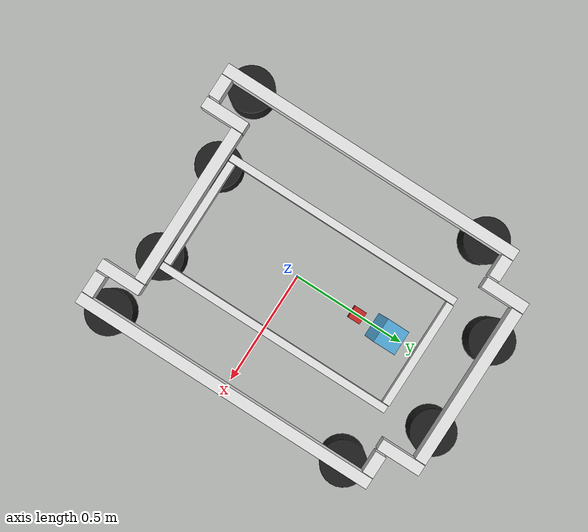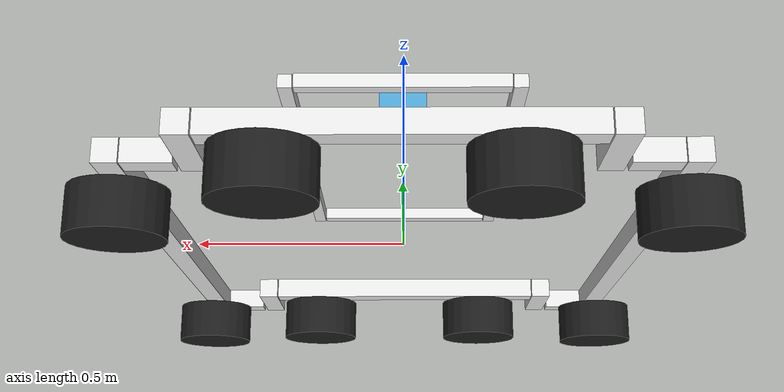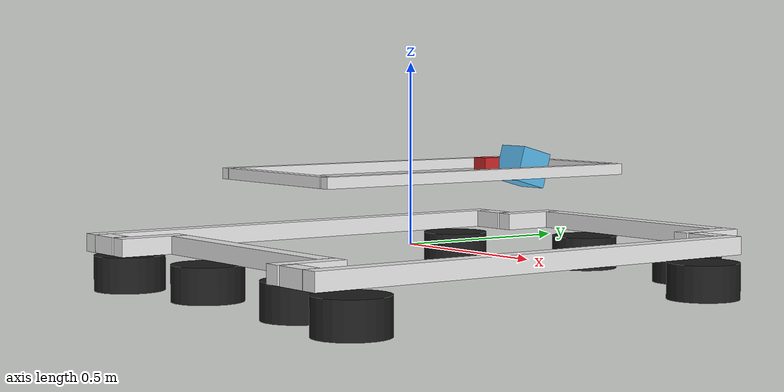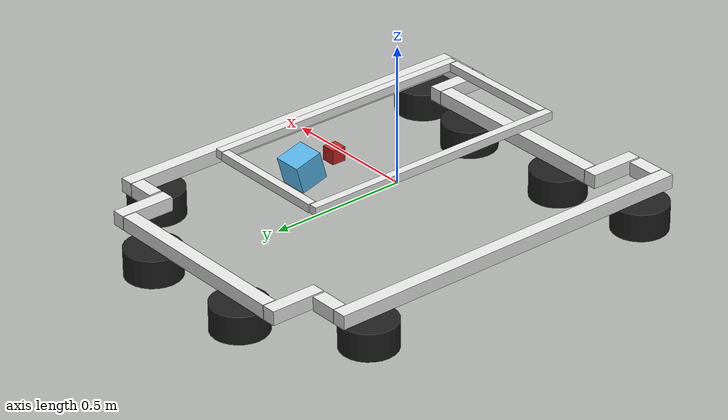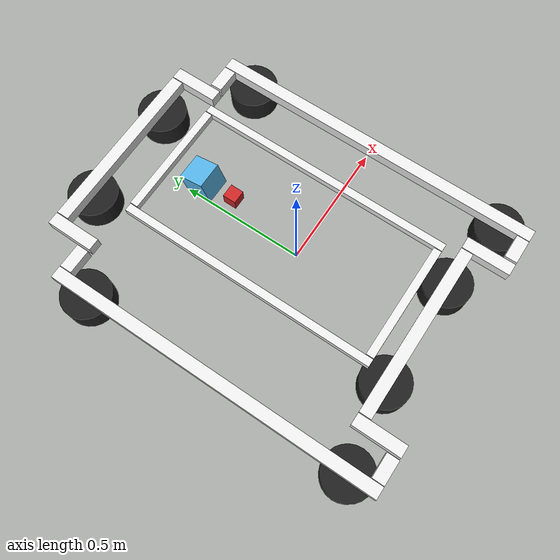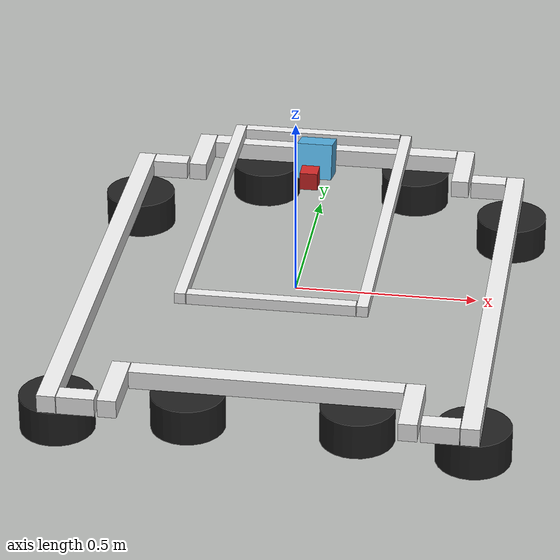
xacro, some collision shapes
<?xml version="1.0"?>
<robot name="gecko" xmlns:xacro="http://www.ros.org/wiki/xacro">

  <xacro:include filename="$(find gecko_description)/urdf/materials.xacro" />
  <xacro:include filename="$(find gecko_description)/urdf/gecko.gazebo" />
  <xacro:include filename="$(find gecko_description)/urdf/camera.xacro" />
  <xacro:include filename="$(find gecko_description)/urdf/laser.xacro" />
  <!--xacro:include filename="$(find gecko_description)/urdf/flashlight.urdf.xacro" /-->

    <!--////////////////////////// plugins ////////////////////////////////////////////////-->

    <gazebo>
    <plugin name="gazebo_ros_control" filename="libgazebo_ros_control.so">
      <robotNamespace>/gecko</robotNamespace>
      <legacyModeNS>true</legacyModeNS>
    </plugin>
  </gazebo>

  <!--////////////////////////// properties ////////////////////////////////////////////////-->

  <xacro:property name="high_mass" value="5" />
  <xacro:property name="low_mass" value="5" />

  <!--////////////////////////// macros ////////////////////////////////////////////////-->

    <xacro:macro name="default_high_inertial">
        <inertial>
                <mass value="${high_mass}" />
                <inertia ixx="1.0" ixy="0.0" ixz="0.0"
                     iyy="1.0" iyz="0.0"
                     izz="1.0" />
        </inertial>
    </xacro:macro>

   <xacro:macro name="default_low_inertial">
        <inertial>
                <mass value="${low_mass}" />
                <inertia ixx="1.0" ixy="0.0" ixz="0.0"
                     iyy="1.0" iyz="0.0"
                     izz="1.0" />
        </inertial>
    </xacro:macro>

    <xacro:macro name="tire">
	<visual>
      <geometry>
        <cylinder length="0.1" radius="0.1"/>
      </geometry>
      <origin rpy="0 0 0" xyz="0 0 -0.09"/>
      <material name="black"/>
    </visual>
    <collision>

    <geometry>
        <cylinder length="0.1" radius="0.1"/>
      </geometry>
      <origin rpy="0 0 0" xyz="0 0 -0.09"/>
      <material name="red"/>
          <surface>
        <friction>
          <ode><mu>100000.0</mu><mu2>100000.0</mu2></ode>
        </friction>
      </surface>
      </collision>
    </xacro:macro>

  <!--////////////////////////// left upper links ////////////////////////////////////////////////-->

  <link name="base_link">
  </link>

 <link name="left_leg">
    <visual>
      <geometry>
        <box size="0.05 1.4 0.05"/>
      </geometry>
      <origin rpy="0 0 0" xyz="0 0 0"/>
      <material name="white"/>
    </visual>
    <collision>
    <geometry>
        <box size="0.05 1.4 0.05"/>
      </geometry>
      <origin rpy="0 0 0" xyz="0 0 0"/>
      <material name="red"/>
      </collision>
    <xacro:default_low_inertial />
  </link>

  <joint name="left_leg_joint" type="fixed">
    <parent link="base_link"/>
    <child link="left_leg"/>
    <origin xyz="0.55 0 0"/>
    </joint>

  <link name="upper_left_bar_1">
    <visual>
      <geometry>
        <box size="0.1 0.05 0.05"/>
      </geometry>
      <origin rpy="0 0 0" xyz="-0.077 0 0"/>
      <material name="white"/>
    </visual>
    <collision>
    <geometry>
       <box size="0.1 0.05 0.05"/>
      </geometry>
      <origin rpy="0 0 0" xyz="-0.077 0 0"/>
      <material name="red"/>
          </collision>
    <xacro:default_low_inertial />
  </link>

  <joint name="upper_left_bar_1_joint" type="continuous">
    <parent link="left_leg"/>
    <child link="upper_left_bar_1"/>
    <axis xyz="1 0 0"/>
    <origin xyz="0 -0.675 0"/>
  </joint>

  <link name="upper_left_bar_2">
    <visual>
      <geometry>
        <box size="0.05 0.2 0.05"/>
      </geometry>
      <origin rpy="0 0 0" xyz="0 0.075 0"/>
      <material name="white"/>
    </visual>
    <collision>
     <geometry>
      <box size="0.05 0.2 0.05"/>
      </geometry>
      <origin rpy="0 0 0" xyz="0 0.075 0"/>
      <material name="red"/>
      </collision>
    <xacro:default_low_inertial />
  </link>

  <joint name="upper_left_bar_2_joint" type="fixed">
    <parent link="upper_left_bar_1"/>
    <child link="upper_left_bar_2"/>
    <origin xyz="-0.16 0 0"/>
  </joint>

    <!--////////////////////////// right upper links ////////////////////////////////////////////////-->

   <link name="right_leg">
    <visual>
      <geometry>
        <box size="0.05 1.4 0.05"/>
      </geometry>
      <origin rpy="0 0 0" xyz="0 0 0"/>
      <material name="white"/>
    </visual>
    <collision>
    <geometry>
        <box size="0.05 1.4 0.05"/>
      </geometry>
      <origin rpy="0 0 0" xyz="0 0 0"/>
      <material name="red"/>
      </collision>
    <xacro:default_low_inertial />
  </link>

  <joint name="right_leg_joint" type="fixed">
    <parent link="base_link"/>
    <child link="right_leg"/>
    <origin xyz="-0.55 0 0"/>
    </joint>

  <link name="upper_right_bar_1">
    <visual>
      <geometry>
        <box size="0.1 0.05 0.05"/>
      </geometry>
      <origin rpy="0 0 0" xyz="0.077 0 0"/>
      <material name="white"/>
    </visual>
    <collision>
    <geometry>
       <box size="0.1 0.05 0.05"/>
      </geometry>
      <origin rpy="0 0 0" xyz="0.077 0 0"/>
      <material name="red"/>
          </collision>
    <xacro:default_low_inertial />
  </link>

  <joint name="upper_right_bar_1_joint" type="continuous">
    <parent link="right_leg"/>
    <child link="upper_right_bar_1"/>
    <axis xyz="1 0 0"/>
    <origin xyz="0 -0.675 0"/>
  </joint>

  <link name="upper_right_bar_2">
    <visual>
      <geometry>
        <box size="0.05 0.2 0.05"/>
      </geometry>
      <origin rpy="0 0 0" xyz="0 -0.075 0"/>
      <material name="white"/>
    </visual>
    <collision>
     <geometry>
      <box size="0.05 0.2 0.05"/>
      </geometry>
      <origin rpy="0 0 0" xyz="0 -0.075 0"/>
      <material name="red"/>
      </collision>
    <xacro:default_low_inertial />
  </link>

  <joint name="upper_right_bar_2_joint" type="fixed">
    <parent link="upper_bar"/>
    <child link="upper_right_bar_2"/>
    <origin xyz="-0.78 0 0"/>
  </joint>

 <!--////////////////////////// left lower links ////////////////////////////////////////////////-->

  <link name="lower_left_bar_1">
    <visual>
      <geometry>
        <box size="0.1 0.05 0.05"/>
      </geometry>
      <origin rpy="0 0 0" xyz="-0.077 0 0"/>
      <material name="white"/>
    </visual>
    <collision>
    <geometry>
       <box size="0.1 0.05 0.05"/>
      </geometry>
      <origin rpy="0 0 0" xyz="-0.077 0 0"/>
      <material name="red"/>
          </collision>
    <xacro:default_low_inertial />
  </link>

  <joint name="lower_left_bar_1_joint" type="continuous">
    <parent link="left_leg"/>
    <child link="lower_left_bar_1"/>
    <axis xyz="1 0 0"/>
    <origin xyz="0 0.675 0"/>
  </joint>

  <link name="lower_left_bar_2">
    <visual>
      <geometry>
        <box size="0.05 0.2 0.05"/>
      </geometry>
      <origin rpy="0 0 0" xyz="0 0.075 0"/>
      <material name="white"/>
    </visual>
    <collision>
     <geometry>
      <box size="0.05 0.2 0.05"/>
      </geometry>
      <origin rpy="0 0 0" xyz="0 0.075 0"/>
      <material name="red"/>
      </collision>
    <xacro:default_low_inertial />
  </link>

  <joint name="lower_left_bar_2_joint" type="fixed">
    <parent link="lower_left_bar_1"/>
    <child link="lower_left_bar_2"/>
    <origin xyz="-0.16 0 0"/>
  </joint>

    <!--////////////////////////// right lower links ////////////////////////////////////////////////-->

  <link name="lower_right_bar_1">
    <visual>
      <geometry>
        <box size="0.1 0.05 0.05"/>
      </geometry>
      <origin rpy="0 0 0" xyz="0.077 0 0"/>
      <material name="white"/>
    </visual>
    <collision>
    <geometry>
       <box size="0.1 0.05 0.05"/>
      </geometry>
      <origin rpy="0 0 0" xyz="0.077 0 0"/>
      <material name="red"/>
          </collision>
    <xacro:default_low_inertial />
  </link>

  <joint name="lower_right_bar_1_joint" type="continuous">
    <parent link="right_leg"/>
    <child link="lower_right_bar_1"/>
    <axis xyz="1 0 0"/>
    <origin xyz="0 0.675 0"/>
  </joint>

  <link name="lower_right_bar_2">
    <visual>
      <geometry>
        <box size="0.05 0.2 0.05"/>
      </geometry>
      <origin rpy="0 0 0" xyz="0 -0.075 0"/>
      <material name="white"/>
    </visual>
    <collision>
     <geometry>
      <box size="0.05 0.2 0.05"/>
      </geometry>
      <origin rpy="0 0 0" xyz="0 -0.075 0"/>
      <material name="red"/>
      </collision>
    <xacro:default_low_inertial />
  </link>

  <joint name="lower_right_bar_2_joint" type="fixed">
    <parent link="lower_bar"/>
    <child link="lower_right_bar_2"/>
    <origin xyz="-0.78 0 0"/>
  </joint>

<!-- /////////////// upper and lower fixed bars ///////////////////////////////////////-->

   <link name="upper_bar">
    <visual>
      <geometry>
        <box size="0.725 0.05 0.05"/>
      </geometry>
      <origin rpy="0 0 0" xyz="-0.39 0 0"/>
      <material name="white"/>
    </visual>
    <collision>
    <geometry>
        <box size="0.725 0.05 0.05"/>
      </geometry>
      <origin rpy="0 0 0" xyz="-0.39 0 0"/>
      <material name="red"/>
      </collision>
    <xacro:default_high_inertial />
  </link>

  <joint name="upper_bar_joint" type="fixed">
    <parent link="upper_left_bar_2"/>
    <child link="upper_bar"/>
    <origin xyz="0 0.15 0"/>
    </joint>

    <link name="lower_bar">
    <visual>
      <geometry>
        <box size="0.725 0.05 0.05"/>
      </geometry>
      <origin rpy="0 0 0" xyz="-0.39 0 0"/>
      <material name="white"/>
    </visual>
    <collision>
    <geometry>
        <box size="0.725 0.05 0.05"/>
      </geometry>
      <origin rpy="0 0 0" xyz="-0.39 0 0"/>
      <material name="red"/>
      </collision>
    <xacro:default_high_inertial />
  </link>

  <joint name="lower_bar_joint" type="fixed">
    <parent link="lower_left_bar_2"/>
    <child link="lower_bar"/>
    <origin xyz="0 0.15 0"/>
    </joint>

    <!-- /////////////// 4x4 tires ///////////////////////////////////////-->

<link name="upper_left_cylinder">
    <xacro:tire/>
    <xacro:default_low_inertial />
 </link>

   <joint name="upper_left_cylinder_joint" type="fixed">
    <parent link="left_leg"/>
    <child link="upper_left_cylinder"/>
    <origin xyz="0 -0.58 0"/>
    </joint>

  <link name="upper_right_cylinder">
    <xacro:tire/>
    <xacro:default_low_inertial />
 </link>

   <joint name="upper_right_cylinder_joint" type="fixed">
    <parent link="right_leg"/>
    <child link="upper_right_cylinder"/>
    <origin xyz="0 -0.58 0"/>
    </joint>

<link name="lower_left_cylinder">
    <xacro:tire/>
    <xacro:default_low_inertial />
 </link>

   <joint name="lower_left_cylinder_joint" type="fixed">
    <parent link="left_leg"/>
    <child link="lower_left_cylinder"/>
    <origin xyz="0 0.58 0"/>
    </joint>

<link name="lower_right_cylinder">
    <xacro:tire/>
    <xacro:default_low_inertial />
 </link>

   <joint name="lower_right_cylinder_joint" type="fixed">
    <parent link="right_leg"/>
    <child link="lower_right_cylinder"/>
    <origin xyz="0 0.58 0"/>
    </joint>

  <link name="upper_left_inside_cylinder">
    <xacro:tire/>
    <xacro:default_high_inertial />
 </link>

   <joint name="upper_left_inside_cylinder_joint" type="continuous">
    <parent link="upper_bar"/>
    <child link="upper_left_inside_cylinder"/>
    <origin xyz="-0.15 0 0"/>
    </joint>

  <link name="upper_right_inside_cylinder">
    <xacro:tire/>
    <xacro:default_high_inertial />
 </link>

   <joint name="upper_right_inside_cylinder_joint" type="continuous">
    <parent link="upper_bar"/>
    <child link="upper_right_inside_cylinder"/>
    <origin xyz="-0.6 0 0"/>
    </joint>

  <link name="lower_left_inside_cylinder">
    <xacro:tire/>
    <xacro:default_high_inertial />
 </link>

   <joint name="lower_left_inside_cylinder_joint" type="continuous">
    <parent link="lower_bar"/>
    <child link="lower_left_inside_cylinder"/>
    <origin xyz="-0.15 0 0"/>
    </joint>

  <link name="lower_right_inside_cylinder">
    <xacro:tire/>
    <xacro:default_high_inertial />
 </link>

   <joint name="lower_right_inside_cylinder_joint" type="continuous">
    <parent link="lower_bar"/>
    <child link="lower_right_inside_cylinder"/>
    <origin xyz="-0.6 0 0"/>
    </joint>

<!--////////////////////////// fixed bar ////////////////////////////////////////////////-->

 <link name="left_inside_leg">
    <visual>
      <geometry>
        <box size="0.03 1 0.03"/>
      </geometry>
      <origin rpy="0 0 0" xyz="0 0 0"/>
      <material name="white"/>
    </visual>
    <collision>
    <geometry>
        <box size="0.03 1 0.03"/>
      </geometry>
      <origin rpy="0 0 0" xyz="0 0 0"/>
      <material name="red"/>
      </collision>
    <xacro:default_low_inertial />
  </link>

  <joint name="left_inside_leg_joint" type="fixed">
    <parent link="base_link"/>
    <child link="left_inside_leg"/>
    <origin xyz="0.24 0.05 0.2"/>
    </joint>

     <link name="right_inside_leg">
    <visual>
      <geometry>
        <box size="0.03 1 0.03"/>
      </geometry>
      <origin rpy="0 0 0" xyz="0 0 0"/>
      <material name="white"/>
    </visual>
    <collision>
    <geometry>
        <box size="0.03 1 0.03"/>
      </geometry>
      <origin rpy="0 0 0" xyz="0 0 0"/>
      <material name="red"/>
      </collision>
    <xacro:default_low_inertial />
  </link>

  <joint name="right_inside_leg_joint" type="fixed">
    <parent link="base_link"/>
    <child link="right_inside_leg"/>
    <origin xyz="-0.24 0.05 0.2"/>
    </joint>

<link name="upper_inside_leg">
    <visual>
      <geometry>
        <box size="0.445 0.03 0.03"/>
      </geometry>
      <origin rpy="0 0 0" xyz="0 0 0"/>
      <material name="white"/>
    </visual>
    <collision>
    <geometry>
       <box size="0.445 0.03 0.03"/>
      </geometry>
      <origin rpy="0 0 0" xyz="0 0 0"/>
      <material name="red"/>
          </collision>
    <xacro:default_low_inertial />
  </link>

  <joint name="upper_inside_leg_joint" type="fixed">
    <parent link="base_link"/>
    <child link="upper_inside_leg"/>
    <axis xyz="1 0 0"/>
    <origin xyz="0 -0.435 0.2"/>
  </joint>

  <link name="lower_inside_leg">
    <visual>
      <geometry>
        <box size="0.445 0.03 0.03"/>
      </geometry>
      <origin rpy="0 0 0" xyz="0 0 0"/>
      <material name="white"/>
    </visual>
    <collision>
    <geometry>
       <box size="0.445 0.03 0.03"/>
      </geometry>
      <origin rpy="0 0 0" xyz="0 0 0"/>
      <material name="red"/>
          </collision>
    <xacro:default_low_inertial />
  </link>

  <joint name="lower_inside_leg_joint" type="fixed">
    <parent link="base_link"/>
    <child link="lower_inside_leg"/>
    <axis xyz="1 0 0"/>
    <origin xyz="0 0.538 0.2"/>
  </joint>

<!-- /////////////// transmissions ///////////////////////////////////////-->

<transmission name="tran_upper_left_bar_1_joint">
    <type>transmission_interface/SimpleTransmission</type>
    <joint name="upper_left_bar_1_joint">
      <hardwareInterface>hardware_interface/PositionJointInterface</hardwareInterface>
    </joint>
    <actuator name="motor_upper_left_bar_1_joint">
      <hardwareInterface>hardware_interface/PositionJointInterface</hardwareInterface>
      <mechanicalReduction>1</mechanicalReduction>
    </actuator>
  </transmission>

  <transmission name="tran_upper_right_bar_1_joint">
    <type>transmission_interface/SimpleTransmission</type>
    <joint name="upper_right_bar_1_joint">
      <hardwareInterface>hardware_interface/PositionJointInterface</hardwareInterface>
    </joint>
    <actuator name="motor_upper_right_bar_1_joint">
      <hardwareInterface>hardware_interface/PositionJointInterface</hardwareInterface>
      <mechanicalReduction>1</mechanicalReduction>
    </actuator>
  </transmission>

  <transmission name="tran_lower_left_bar_1_joint">
    <type>transmission_interface/SimpleTransmission</type>
    <joint name="lower_left_bar_1_joint">
      <hardwareInterface>hardware_interface/PositionJointInterface</hardwareInterface>
    </joint>
    <actuator name="motor_lower_left_bar_1_joint">
      <hardwareInterface>hardware_interface/PositionJointInterface</hardwareInterface>
      <mechanicalReduction>1</mechanicalReduction>
    </actuator>
  </transmission>

  <transmission name="tran_lower_right_bar_1_joint">
    <type>transmission_interface/SimpleTransmission</type>
    <joint name="lower_right_bar_1_joint">
      <hardwareInterface>hardware_interface/PositionJointInterface</hardwareInterface>
    </joint>
    <actuator name="motor_lower_right_bar_1_joint">
      <hardwareInterface>hardware_interface/PositionJointInterface</hardwareInterface>
      <mechanicalReduction>1</mechanicalReduction>
    </actuator>
  </transmission>

  <transmission name="tran_horizontal_traslation_link_joint">
    <type>transmission_interface/SimpleTransmission</type>
    <joint name="horizontal_traslation_link_joint">
      <hardwareInterface>hardware_interface/PositionJointInterface</hardwareInterface>
    </joint>
    <actuator name="motor_horizontal_traslation_link_joint">
      <hardwareInterface>hardware_interface/PositionJointInterface</hardwareInterface>
      <mechanicalReduction>1</mechanicalReduction>
    </actuator>
  </transmission>

   <transmission name="tran_hokuyo_joint">
    <type>transmission_interface/SimpleTransmission</type>
    <joint name="hokuyo_joint">
      <hardwareInterface>hardware_interface/PositionJointInterface</hardwareInterface>
    </joint>
    <actuator name="motor_hokuyo_joint">
      <hardwareInterface>hardware_interface/PositionJointInterface</hardwareInterface>
      <mechanicalReduction>1</mechanicalReduction>
    </actuator>
  </transmission>

</robot>

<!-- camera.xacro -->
<robot>

       <!--////////////////////////// links ////////////////////////////////////////////////-->

  <!-- Camera -->
  <link name="camera_link">
    <collision>
      <origin xyz="0 0 0" rpy="0 0 0"/>
      <geometry>
    <box size="0.05 0.05 0.05"/>
      </geometry>
    </collision>

    <visual>
      <origin xyz="0 0 0" rpy="0 0 0"/>
      <geometry>
    <box size="0.05 0.05 0.05"/>
      </geometry>
      <material name="red"/>
    </visual>

    <inertial>
      <mass value="1e-5" />
      <origin xyz="0 0 0" rpy="0 0 0"/>
      <inertia ixx="1e-6" ixy="0" ixz="0" iyy="1e-6" iyz="0" izz="1e-6" />
    </inertial>
  </link>

    <joint name="camera_joint" type="fixed">
    <axis xyz="0 0 0" />
    <origin xyz="0.03 0 0.13" rpy="0 0.28 0"/>
    <parent link="hokuyo_link"/>
    <child link="camera_link"/>
  </joint>

<gazebo reference="camera_link">
    <sensor type="camera" name="camera1">
      <update_rate>30.0</update_rate>
      <camera name="head">
        <horizontal_fov>1.3962634</horizontal_fov>
        <image>
          <width>800</width>
          <height>800</height>
          <format>R8G8B8</format>
        </image>
        <clip>
          <near>0.02</near>
          <far>300</far>
        </clip>
        <noise>
          <type>gaussian</type>
          <!-- Noise is sampled independently per pixel on each frame.
               That pixel's noise value is added to each of its color
               channels, which at that point lie in the range [0,1]. -->
          <mean>0.0</mean>
          <stddev>0.007</stddev>
        </noise>
      </camera>
      <plugin name="camera_controller" filename="libgazebo_ros_camera.so">
       <robotNamespace>/gecko</robotNamespace>
        <alwaysOn>true</alwaysOn>
        <updateRate>0.0</updateRate>
        <cameraName>camera1</cameraName>
        <imageTopicName>image_raw</imageTopicName>
        <cameraInfoTopicName>camera_info</cameraInfoTopicName>
        <frameName>camera_link</frameName>
        <hackBaseline>0.07</hackBaseline>
        <distortionK1>0.0</distortionK1>
        <distortionK2>0.0</distortionK2>
        <distortionK3>0.0</distortionK3>
        <distortionT1>0.0</distortionT1>
        <distortionT2>0.0</distortionT2>
      </plugin>
    </sensor>
  </gazebo>

</robot>

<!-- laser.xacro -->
<robot>

       <!--////////////////////////// links ////////////////////////////////////////////////-->

  <!-- Hokuyo Laser -->

  <link name="hokuyo_link">
    <collision>
      <origin xyz="0 0 0" rpy="0 0 0"/>
      <geometry>
    <box size="0.1 0.1 0.1"/>
      </geometry>
    </collision>

    <visual>
      <origin xyz="0 0 0" rpy="0 0 0"/>
      <geometry>
        <mesh filename="package://gecko_description/meshes/hokuyo.dae"/>
      </geometry>
    </visual>

    <inertial>
      <mass value="1" />
      <origin xyz="0 0 0" rpy="0 0 0"/>
      <inertia ixx="1" ixy="0" ixz="0" iyy="1" iyz="0" izz="1" />
    </inertial>
  </link>

   <joint name="hokuyo_joint" type="prismatic">
    <axis xyz="0 1 0" />
    <origin xyz="0 0 0" rpy="0 1.3 ${-pi/2}"/>
    <parent link="horizontal_traslation_link"/>
    <child link="hokuyo_link"/>
    <limit effort="10.0" lower="-0.2" upper="0.2" velocity="0.5"/>
  </joint>

  <link name="horizontal_traslation_link">

      <visual>
      <origin xyz="0 0 0" rpy="0 0 0"/>
	<geometry>
    <box size="0.01 0.01 0.01"/>
      </geometry>
    </visual>

    <collision>
      <origin xyz="0 0 0" rpy="0 0 0"/>
      <geometry>
    <box size="0 0 0"/>
      </geometry>
    </collision>

    <inertial>
      <mass value="0.5" />
      <origin xyz="0 0 0" rpy="0 0 0"/>
                <inertia ixx="1.0" ixy="0.0" ixz="0.0"
                     iyy="1.0" iyz="0.0"
                     izz="1.0" />

    </inertial>
  </link>

   <joint name="horizontal_traslation_link_joint" type="prismatic">
    <axis xyz="0 1 0" />
    <origin xyz="0 0.4 0.2" rpy="0 0 0"/>
    <parent link="base_link"/>
    <child link="horizontal_traslation_link"/>
    <limit effort="1000" lower="-0.66" upper="0.08" velocity="0.5"/>
  </joint>

   <!-- hokuyo -->
  <gazebo reference="hokuyo_link">
    <sensor type="ray" name="head_hokuyo_sensor">
      <pose>0 0 0 0 0 0</pose>
      <visualize>true</visualize>
      <update_rate>40</update_rate>
      <ray>
        <scan>
          <horizontal>
            <samples>720</samples>
            <resolution>1</resolution>
            <min_angle>-1</min_angle>
            <max_angle>1</max_angle>
          </horizontal>
        </scan>
        <range>
          <min>0.10</min>
          <max>30.0</max>
          <resolution>0.01</resolution>
        </range>
        <noise>
          <type>gaussian</type>

          <mean>0.0</mean>
          <stddev>0.01</stddev>
        </noise>
      </ray>
      <plugin name="gazebo_ros_head_hokuyo_controller" filename="libgazebo_ros_laser.so">
        <topicName>/hokuyo_scan</topicName>
        <frameName>hokuyo_link</frameName>
      </plugin>
    </sensor>
  </gazebo>

</robot>
